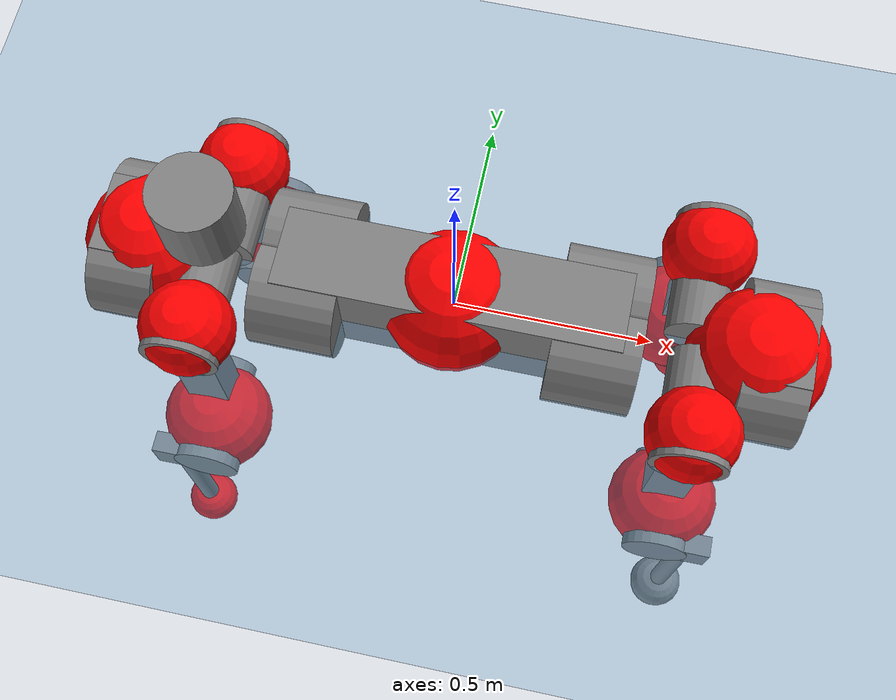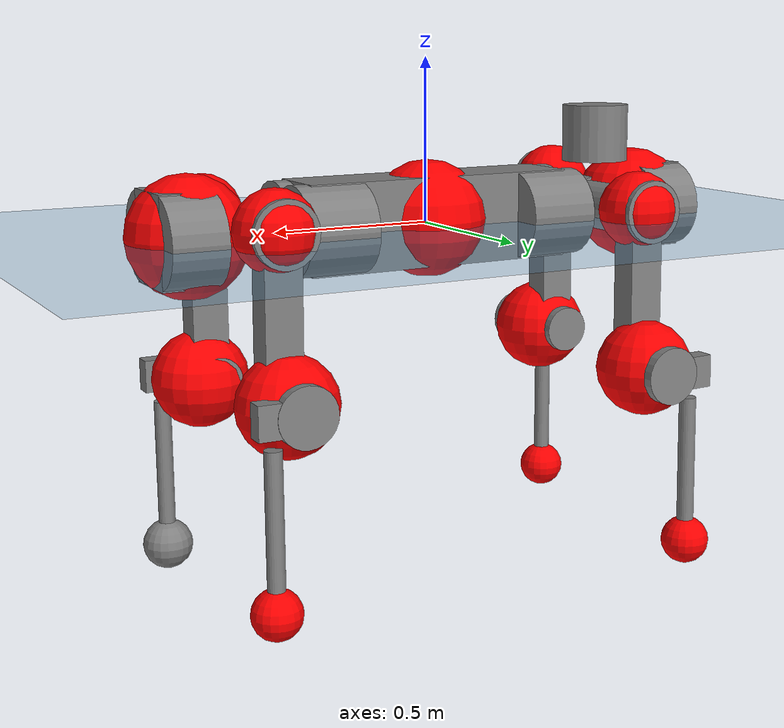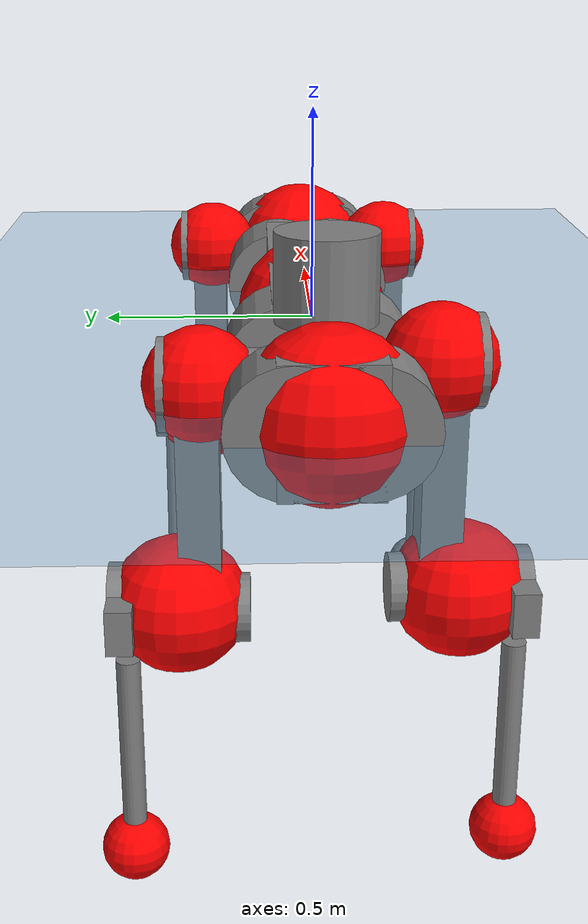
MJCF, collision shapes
<mujoco model="anymal_c">
  <compiler angle="radian" assetdir="assets" balanceinertia="true" inertiafromgeom="false"/>

  <option timestep="0.005" density="1.2" viscosity="2e-05"/>

  <size nkey="1"/>

  <visual>
    <quality shadowsize="8192"/>
    <map shadowclip="0.5"/>
  </visual>

  <default>
    <default class="/">
      <material specular="0" shininess="0.25"/>
      <geom contype="0" conaffinity="0" group="1" solref="-1000 -80"/>
      <site size="0.01 0.005 0.005" group="5"/>
      <general forcelimited="true" forcerange="-80 80" biastype="affine" gainprm="80" biasprm="0 -80 -2"/>
      <default class="anymal_c">
        <joint armature="0.01" damping="0.01" frictionloss="0.1"/>
        <default class="visual">
          <geom type="mesh" group="2"/>
          <default class="visual_zflip"/>
        </default>
        <default class="collision">
          <geom type="cylinder" group="3"/>
          <default class="foot">
            <geom size="0.03 0 0" type="sphere" condim="6" priority="1" friction="0.8 0.02 0.01" solimp="0.015 1 0.03"/>
          </default>
        </default>
      </default>
      <default class="reward_collision_sphere">
        <geom group="5" rgba="1 0 0 1"/>
      </default>
    </default>
  </default>

  <asset>
    <texture type="skybox" colorspace="auto" name="//unnamed_texture_0" builtin="gradient" rgb1="0.95 0.95 0.95" rgb2="0.95 0.95 0.95" width="100" height="600"/>
    <texture type="2d" colorspace="auto" name="texplane" builtin="checker" rgb1="0.345 0.575 0.748" rgb2="0.345 0.575 0.748" markrgb="1 1 1" width="512" height="512"/>
    <texture type="2d" colorspace="linear" name="base" file="base.png"/>
    <texture type="2d" colorspace="linear" name="top_shell" file="top_shell.png"/>
    <texture type="2d" colorspace="linear" name="bottom_shell" file="bottom_shell.png"/>
    <texture type="2d" colorspace="linear" name="remote" file="remote.png"/>
    <texture type="2d" colorspace="linear" name="hatch" file="hatch.png"/>
    <texture type="2d" colorspace="linear" name="handle" file="handle.png"/>
    <texture type="2d" colorspace="linear" name="face" file="face.png"/>
    <texture type="2d" colorspace="linear" name="battery" file="battery.png"/>
    <texture type="2d" colorspace="linear" name="lidar_cage" file="lidar_cage.png"/>
    <texture type="2d" colorspace="linear" name="depth_camera" file="depth_camera.png"/>
    <texture type="2d" colorspace="linear" name="wide_angle_camera" file="wide_angle_camera.png"/>
    <texture type="2d" colorspace="linear" name="lidar" file="lidar.png"/>
    <texture type="2d" colorspace="linear" name="drive" file="drive.png"/>
    <texture type="2d" colorspace="linear" name="hip_l" file="hip_l.png"/>
    <texture type="2d" colorspace="linear" name="shank_l" file="shank_l.png"/>
    <texture type="2d" colorspace="linear" name="foot" file="foot.png"/>
    <texture type="2d" colorspace="linear" name="thigh" file="thigh.png"/>
    <texture type="2d" colorspace="linear" name="shank_r" file="shank_r.png"/>
    <texture type="2d" colorspace="linear" name="hip_r" file="hip_r.png"/>
    <material name="MatPlane" class="/" texture="texplane" texuniform="true" texrepeat="2 2" specular="0.9" shininess="0.5"/>
    <material name="black_plastic" class="/" rgba="0.007 0.007 0.007 1"/>
    <material name="green" class="/" rgba="0.052 0.178 0.033 1"/>
    <material name="red" class="/" rgba="0.178 0.006 0.005 1"/>
    <material name="yellow" class="/" rgba="0.178 0.119 0.006 1"/>
    <material name="lwl" class="/" rgba="0.8 0.8 0.8 1"/>
    <material name="base" class="/" texture="base"/>
    <material name="top_shell" class="/" texture="top_shell"/>
    <material name="bottom_shell" class="/" texture="bottom_shell"/>
    <material name="hip_l" class="/" texture="hip_l"/>
    <material name="thigh" class="/" texture="thigh"/>
    <material name="shank_l" class="/" texture="shank_l"/>
    <material name="foot" class="/" texture="foot"/>
    <material name="hip_r" class="/" texture="hip_r"/>
    <material name="shank" class="/" texture="shank_r"/>
    <material name="hatch" class="/" texture="hatch"/>
    <material name="remote" class="/" texture="remote"/>
    <material name="handle" class="/" texture="handle"/>
    <material name="face" class="/" texture="face"/>
    <material name="depth_camera" class="/" texture="depth_camera"/>
    <material name="wide_angle_camera" class="/" texture="wide_angle_camera"/>
    <material name="battery" class="/" texture="battery"/>
    <material name="lidar_cage" class="/" texture="lidar_cage"/>
    <material name="lidar" class="/" texture="lidar"/>
    <material name="drive" class="/" texture="drive"/>
    <mesh name="base_0" class="/" file="base_0.obj"/>
    <mesh name="base_1" class="/" file="base_1.obj"/>
    <mesh name="base_2" class="/" file="base_2.obj"/>
    <mesh name="base_3" class="/" file="base_3.obj"/>
    <mesh name="base_4" class="/" file="base_4.obj"/>
    <mesh name="base_5" class="/" file="base_5.obj"/>
    <mesh name="top_shell" class="/" file="top_shell.obj"/>
    <mesh name="bottom_shell" class="/" file="bottom_shell.obj"/>
    <mesh name="remote" class="/" file="remote.obj"/>
    <mesh name="handle" class="/" file="handle.obj"/>
    <mesh name="face" class="/" file="face.obj"/>
    <mesh name="wide_angle_camera" class="/" file="wide_angle_camera.obj"/>
    <mesh name="depth_camera" class="/" file="depth_camera.obj"/>
    <mesh name="battery" class="/" file="battery.obj"/>
    <mesh name="lidar_cage" class="/" file="lidar_cage.obj"/>
    <mesh name="lidar" class="/" file="lidar.obj"/>
    <mesh name="drive" class="/" file="drive.obj"/>
    <mesh name="hip_l" class="/" file="hip_l.obj"/>
    <mesh name="thigh" class="/" file="thigh.obj"/>
    <mesh name="shank_l" class="/" file="shank_l.obj"/>
    <mesh name="foot" class="/" file="foot.obj"/>
    <mesh name="hip_r" class="/" file="hip_r.obj"/>
    <mesh name="hatch" class="/" file="hatch.obj"/>
    <mesh name="shank_r" class="/" file="shank_r.obj"/>
  </asset>

  <worldbody>
    <geom name="floor" class="/" size="100 100 0.125" type="plane" group="0" material="MatPlane"/>
    <light name="toplight_shadow" class="/" pos="0 0 5" dir="0.0990148 0.0990148 -0.990148" type="directional" ambient="0.04 0.04 0.04" diffuse="0.55 0.55 0.55" specular="0.12 0.12 0.12"/>
    <light name="toplight_fill" class="/" pos="0 0 5" dir="0.0990148 0.0990148 -0.990148" type="directional" castshadow="false" ambient="0.04 0.04 0.04" diffuse="0.3 0.3 0.3" specular="0.08 0.08 0.08"/>
    <body name="trunk" childclass="anymal_c" pos="-0.00544886 0.00202238 0.0139418" quat="0.999996 0.000926024 0.00278631 0.000127839">
      <inertial pos="0.0193296 0.0167057 0.0778035" quat="0.47829 0.488549 0.490795 0.540073" mass="62.7773" diaginertia="6.34976 0.545552 3.12394"/>
      <joint name="//unnamed_joint_0" type="free" armature="0" damping="0" frictionloss="0"/>
      <geom name="//unnamed_geom_1" class="visual" material="green" mesh="base_0"/>
      <geom name="//unnamed_geom_2" class="visual" material="yellow" mesh="base_1"/>
      <geom name="//unnamed_geom_3" class="visual" material="red" mesh="base_2"/>
      <geom name="//unnamed_geom_4" class="visual" material="black_plastic" mesh="base_3"/>
      <geom name="//unnamed_geom_5" class="visual" material="lwl" mesh="base_4"/>
      <geom name="//unnamed_geom_6" class="visual" material="base" mesh="base_5"/>
      <geom name="trunk_1" class="collision" size="0.433937 0.104743 0.13467" type="box"/>
      <geom name="trunk_2" class="collision" size="0.13467 0.108484" pos="0.371684 0.0712687 0" quat="0.707107 0 0.707107 0"/>
      <geom name="trunk_3" class="collision" size="0.13467 0.108484" pos="-0.371684 0.0712687 0" quat="0.707107 0 0.707107 0"/>
      <geom name="trunk_4" class="collision" size="0.13467 0.108484" pos="0.371684 -0.0712687 0" quat="0.707107 0 0.707107 0"/>
      <geom name="trunk_5" class="collision" size="0.13467 0.108484" pos="-0.371684 -0.0712687 0" quat="0.707107 0 0.707107 0"/>
      <geom name="//unnamed_geom_12" class="visual" material="top_shell" mesh="top_shell"/>
      <geom name="//unnamed_geom_13" class="visual" material="bottom_shell" mesh="bottom_shell"/>
      <geom name="//unnamed_geom_14" class="visual" material="remote" mesh="remote"/>
      <geom name="//unnamed_geom_15" class="visual" material="handle" mesh="handle"/>
      <geom name="//unnamed_geom_16" class="visual" pos="0.708335 0 0" quat="1 0 0 0" material="face" mesh="face"/>
      <geom name="trunk_6" class="collision" size="0.0822984 0.104743 0.13467" pos="0.802324 0 0" type="box"/>
      <geom name="//unnamed_geom_18" class="collision" size="0.13467 0.0822984" pos="0.802324 0.0712687 0" quat="0.707107 0 0.707107 0"/>
      <geom name="//unnamed_geom_19" class="collision" size="0.13467 0.0822984" pos="0.802324 -0.0712687 0" quat="0.707107 0 0.707107 0"/>
      <geom name="//unnamed_geom_20" class="visual" pos="0.788911 0 -0.0518537" quat="0.965926 0 0.258819 0" material="depth_camera" mesh="depth_camera"/>
      <geom name="//unnamed_geom_21" class="visual" pos="0.87666 0 0.026377" material="wide_angle_camera" mesh="wide_angle_camera"/>
      <geom name="//unnamed_geom_22" class="visual_zflip" pos="-0.708335 0 0" quat="0 0 0 1" material="face" mesh="face"/>
      <geom name="trunk_7" class="collision" size="0.0822984 0.104743 0.13467" pos="-0.802324 0 0" quat="0 0 0 1" type="box"/>
      <geom name="//unnamed_geom_24" class="collision" size="0.13467 0.0822984" pos="-0.802324 -0.0712687 0" quat="0 -0.707107 0 0.707107"/>
      <geom name="//unnamed_geom_25" class="collision" size="0.13467 0.0822984" pos="-0.802324 0.0712687 0" quat="0 -0.707107 0 0.707107"/>
      <geom name="//unnamed_geom_26" class="visual" pos="-0.788911 0 -0.0518537" quat="0 -0.258819 0 0.965926" material="depth_camera" mesh="depth_camera"/>
      <geom name="//unnamed_geom_27" class="visual_zflip" pos="-0.87666 0 0.026377" quat="0 0 0 1" material="wide_angle_camera" mesh="wide_angle_camera"/>
      <geom name="//unnamed_geom_28" class="visual" material="battery" mesh="battery"/>
      <geom name="//unnamed_geom_29" class="visual" pos="0 0.0687837 0.0507822" quat="0.683013 -0.183013 0.183013 0.683013" material="depth_camera" mesh="depth_camera"/>
      <geom name="//unnamed_geom_30" class="visual" pos="0 -0.0687837 0.0507822" quat="0.683013 0.183013 0.183013 -0.683013" material="depth_camera" mesh="depth_camera"/>
      <geom name="//unnamed_geom_31" class="visual" pos="-0.622036 0 0.129506" quat="1 0 0 0" material="lidar_cage" mesh="lidar_cage"/>
      <geom name="trunk_8" class="collision" size="0.104743 0.0897801" pos="-0.622036 0 0.235226"/>
      <geom name="//unnamed_geom_33" class="visual" pos="-0.622036 -0.000271383 0.250555" quat="0.707107 0 0 -0.707107" material="lidar" mesh="lidar"/>
      <geom name="//unnamed_geom_34" class="visual" pos="0.512496 0.106149 -1.28318e-08" quat="0.258819 0.965926 0 0" material="drive" mesh="drive"/>
      <geom name="//unnamed_geom_35" class="visual" pos="0.512496 -0.106149 1.28318e-08" quat="0.258819 -0.965926 0 0" material="drive" mesh="drive"/>
      <geom name="//unnamed_geom_36" class="visual" pos="-0.512496 0.106149 1.28318e-08" quat="0 0 0.965926 -0.258819" material="drive" mesh="drive"/>
      <geom name="//unnamed_geom_37" class="visual" pos="-0.512496 -0.106149 -1.28318e-08" quat="0 0 -0.965926 -0.258819" material="drive" mesh="drive"/>
      <geom name="//unnamed_geom_38" class="visual" pos="0.198231 0 0.128625" quat="1 0 0 0" material="hatch" mesh="hatch"/>
      <geom name="//unnamed_geom_39" class="reward_collision_sphere" size="0.17956"/>
      <geom name="//unnamed_geom_40" class="reward_collision_sphere" size="0.17956" pos="0.769 0 0"/>
      <geom name="//unnamed_geom_41" class="reward_collision_sphere" size="0.17956" pos="-0.769 0 0"/>
      <site name="imu" pos="0.519186 0.0404427 -0.00152858" size="0.0149633"/>
      <camera name="track" pos="0 -2.03625 0" quat="0.707107 0.707107 0 0" mode="trackcom"/>
      <camera name="ego_camera" pos="0.769 0 -0.0704796" quat="-0.5 -0.5 0.5 0.5"/>
      <body name="LF_HIP" pos="0.506152 0.115808 0.00380109" quat="0.259282 0.965785 -0.00442078 0.0035423">
        <inertial pos="0.0799755 -0.00406209 -0.00974959" quat="-0.181197 0.720353 -0.15303 0.651798" mass="11.9233" diaginertia="0.109692 0.0059022 0.0520522"/>
        <joint name="LF_HAA" pos="0 0 0" axis="0.997301 0.05355 0.0502292" stiffness="0.0439569" range="-0.619601 0.245563" armature="0.00142262" damping="0.0912696" frictionloss="0.202929"/>
        <geom name="//unnamed_geom_42" class="visual" pos="0 -0.000754835 0.000123981" quat="0.258819 -0.965926 0 0" material="hip_l" mesh="hip_l"/>
        <geom name="//unnamed_geom_43" class="visual" pos="0.102363 -0.115203 -0.0720147" quat="0.183013 -0.683013 0.683013 0.183013" material="drive" mesh="drive"/>
        <geom name="//unnamed_geom_44" class="collision" size="0.0748167 0.104743" pos="0.102362 -0.0121766 -0.0121665" quat="-0.353553 -0.612372 0.612372 -0.353553"/>
        <body name="LF_THIGH" pos="0.103376 -0.0687054 -0.074442" quat="0.182573 -0.68469 0.681847 0.181523">
          <inertial pos="0.0421591 0.00028307 -0.450057" quat="0.996997 -0.0140362 -0.0458641 0.0607952" mass="8.09774" diaginertia="0.502513 0.0305567 0.0725406"/>
          <joint name="LF_HFE" pos="0 0 0" axis="0.995724 -0.0565926 0.0730181" range="-2.97579 2.99579" armature="0.0101533" damping="0.0496708" frictionloss="0.273933"/>
          <geom name="//unnamed_geom_45" class="visual" pos="0.0137435 2.16566e-05 0" quat="0.707107 0 0 -0.707107" material="thigh" mesh="thigh"/>
          <geom name="//unnamed_geom_46" class="collision" size="0.0972617 0.0598534" pos="0.0683556 0 0" quat="0.5 0.5 -0.5 -0.5"/>
          <geom name="//unnamed_geom_47" class="collision" size="0.0561125 0.04489 0.211453" pos="0.0512667 0 -0.248994" quat="0.707107 0 0 -0.707107" type="box"/>
          <geom name="//unnamed_geom_48" class="visual" pos="0.171402 0 -0.502167" quat="1 0 0 0" material="drive" mesh="drive"/>
          <geom name="//unnamed_geom_49" class="collision" size="0.0748167 0.104743" pos="0.0517794 0 -0.502167" quat="0.707107 0 0.707107 0"/>
          <geom name="//unnamed_geom_50" class="reward_collision_sphere" size="0.119707" pos="0.0427222 0 0"/>
          <body name="LF_SHANK" pos="0.155921 0.0158762 -0.483378" quat="0.99997 0.00167777 -0.00559952 -0.00506106">
            <inertial pos="0.0173374 -0.0612939 -0.133936" quat="0.98787 -0.154724 -0.00533711 -0.0120136" mass="2.39247" diaginertia="0.16844 0.00998599 0.0239844"/>
            <joint name="LF_KFE" pos="0 0 0" axis="0.998728 0.043811 0.0249499" stiffness="0.0193755" range="-2.86974 2.93705" armature="0.0067509" damping="0.0835628" frictionloss="0.0513524"/>
            <geom name="//unnamed_geom_51" class="visual" pos="0.00448146 0.0238954 0" quat="0.707107 0 0 -0.707107" material="shank_l" mesh="shank_l"/>
            <geom name="LF_kfe_act" class="collision" size="0.0897801 0.0299267" pos="0.0341778 0 0" quat="0.5 0.5 -0.5 -0.5"/>
            <geom name="//unnamed_geom_53" class="collision" size="0.0860377 0.0505013 0.0284304" pos="0.0341778 -0.0585411 0" quat="0.5 0.5 -0.5 -0.5" type="box"/>
            <geom name="//unnamed_geom_54" class="visual" pos="0.0222999 -0.0818435 -0.5955" quat="0.382683 0 0 -0.92388" material="foot" mesh="foot"/>
            <geom name="LF_calf" class="collision" size="0.0261859 0.21136" pos="0.022301 -0.089544 -0.29775" quat="0.707107 0 0 -0.707107"/>
            <geom name="LF_foot" class="foot" size="0.0533468" pos="0.022301 -0.089544 -0.555855" quat="0.707107 0 0 -0.707107"/>
            <geom name="//unnamed_geom_57" class="reward_collision_sphere" size="0.149633" pos="-0.0854445 0 0"/>
            <geom name="//unnamed_geom_58" class="reward_collision_sphere" size="0.0748167" pos="0.022301 -0.089544 -0.555855"/>
            <site name="LF_foot" class="foot" pos="0.022301 -0.089544 -0.555855" quat="0.707107 0 0 -0.707107" size="0.0149633"/>
          </body>
        </body>
      </body>
      <body name="RF_HIP" pos="0.525823 -0.111733 0.00535659" quat="0.25909 -0.965852 -0.0015931 -0.000498747">
        <inertial pos="0.080529 0.0213638 -0.0198073" quat="0.146898 0.669838 0.124095 0.717173" mass="8.60006" diaginertia="0.0811696 0.00381008 0.045853"/>
        <joint name="RF_HAA" pos="0 0 0" axis="0.998789 -0.00748786 0.0486285" stiffness="0.0464495" range="-0.148798 0.585121" armature="0.026571" damping="0.0233726" frictionloss="0.274914"/>
        <geom name="//unnamed_geom_59" class="visual" pos="0 0.000754829 0.000123981" quat="0.258819 0.965926 0 0" material="hip_r" mesh="hip_r"/>
        <geom name="//unnamed_geom_60" class="visual" pos="0.102362 0.115203 -0.0720147" quat="0.183013 0.683013 0.683013 -0.183013" material="drive" mesh="drive"/>
        <geom name="//unnamed_geom_61" class="collision" size="0.0748167 0.104743" pos="0.102362 0.0121766 -0.0121665" quat="-0.353553 0.612372 0.612372 0.353553"/>
        <body name="RF_THIGH" pos="0.113193 0.056387 -0.0622584" quat="0.186306 0.681636 0.683471 -0.183111">
          <inertial pos="0.0526313 -0.00653336 -0.42755" quat="0.998022 -0.0283214 -0.0539141 0.0155736" mass="14.9019" diaginertia="0.486671 0.0323945 0.0725301"/>
          <joint name="RF_HFE" pos="0 0 0" axis="0.997166 -0.0244974 -0.0711274" stiffness="0.00805115" range="-3.51213 2.86948" armature="0.015099" damping="0.0908469" frictionloss="0.00133556"/>
          <geom name="//unnamed_geom_62" class="visual" pos="0.0137435 2.16566e-05 0" quat="0.707107 0 0 -0.707107" material="thigh" mesh="thigh"/>
          <geom name="//unnamed_geom_63" class="collision" size="0.0972617 0.0598534" pos="0.0683556 0 0" quat="0.5 0.5 0.5 0.5"/>
          <geom name="//unnamed_geom_64" class="collision" size="0.0561125 0.04489 0.211453" pos="0.0512667 0 -0.248994" quat="0.707107 0 0 0.707107" type="box"/>
          <geom name="//unnamed_geom_65" class="visual" pos="0.171402 0 -0.502167" quat="1 0 0 0" material="drive" mesh="drive"/>
          <geom name="//unnamed_geom_66" class="collision" size="0.0748167 0.104743" pos="0.0517794 0 -0.502167" quat="0.707107 0 0.707107 0"/>
          <geom name="//unnamed_geom_67" class="reward_collision_sphere" size="0.119707" pos="0.0427222 0 0"/>
          <body name="RF_SHANK" pos="0.154797 0.017593 -0.512509" quat="0.999997 0.0019833 -0.000946557 0.0013534">
            <inertial pos="0.0120644 0.0670475 -0.159587" quat="0.987125 0.136158 -0.0153206 0.0825252" mass="2.18158" diaginertia="0.186384 0.0123127 0.018283"/>
            <joint name="RF_KFE" pos="0 0 0" axis="0.9997 -0.0145983 -0.0196902" range="-2.88708 2.87623" armature="0.0217998" damping="0" frictionloss="0.285609"/>
            <geom name="//unnamed_geom_68" class="visual" pos="0.00448144 -0.0238953 0" quat="0.707107 0 0 0.707107" material="shank" mesh="shank_r"/>
            <geom name="RF_kfe_act" class="collision" size="0.0897801 0.0299267" pos="0.0341778 0 0" quat="0.5 0.5 0.5 0.5"/>
            <geom name="//unnamed_geom_70" class="collision" size="0.0860377 0.0505013 0.0284304" pos="0.0341778 0.0585411 0" quat="0.5 0.5 0.5 0.5" type="box"/>
            <geom name="//unnamed_geom_71" class="visual" pos="0.0223021 0.0818435 -0.5955" quat="0.382683 0 0 0.92388" material="foot" mesh="foot"/>
            <geom name="RF_calf" class="collision" size="0.0261859 0.21136" pos="0.022301 0.089544 -0.29775" quat="0.707107 0 0 0.707107"/>
            <geom name="RF_foot" class="foot" size="0.0784507" pos="0.022301 0.089544 -0.555855" quat="0.707107 0 0 0.707107"/>
            <geom name="//unnamed_geom_74" class="reward_collision_sphere" size="0.149633" pos="-0.0854445 0 0"/>
            <geom name="//unnamed_geom_75" class="reward_collision_sphere" size="0.0748167" pos="0.022301 0.089544 -0.555855"/>
            <site name="RF_foot" class="foot" pos="0.022301 0.089544 -0.555855" quat="0.707107 0 0 0.707107" size="0.0149633"/>
          </body>
        </body>
      </body>
      <body name="LH_HIP" pos="-0.49397 0.0951679 0.00141539" quat="-0.0040644 0.00143976 0.965741 -0.259474">
        <inertial pos="0.0860079 -0.00155263 -0.0192888" quat="0.0931725 0.664323 0.17299 0.721157" mass="9.13967" diaginertia="0.114845 0.00498471 0.0810544"/>
        <joint name="LH_HAA" pos="0 0 0" axis="0.998825 0.0483654 -0.00315292" stiffness="0.0479462" range="-0.68939 1.1163" armature="0.0284656" damping="0.0792011" frictionloss="0.182323"/>
        <geom name="//unnamed_geom_76" class="visual" pos="0 0.000754829 0.000123981" quat="-0.258819 -0.965926 0 0" material="hip_r" mesh="hip_r"/>
        <geom name="//unnamed_geom_77" class="visual" pos="0.102362 0.115203 -0.0720147" quat="0.183013 0.683013 0.683013 -0.183013" material="drive" mesh="drive"/>
        <geom name="//unnamed_geom_78" class="collision" size="0.0748167 0.104743" pos="0.102362 0.0121766 -0.0121665" quat="-0.353553 0.612372 0.612372 0.353553"/>
        <body name="LH_THIGH" pos="0.115621 0.0933988 -0.0656083" quat="0.182821 0.68326 0.682883 -0.182767">
          <inertial pos="0.0518993 -0.015459 -0.42621" quat="0.994498 0.0137581 -0.0638741 0.0818774" mass="10.1605" diaginertia="0.443935 0.0375056 0.0623834"/>
          <joint name="LH_HFE" pos="0 0 0" axis="0.996854 0.0747927 -0.0262242" range="-3.20644 3.2542" armature="0.0237056" damping="0.0637617" frictionloss="0.0772355"/>
          <geom name="//unnamed_geom_79" class="visual" pos="0.0137435 2.16566e-05 0" quat="0.707107 0 0 -0.707107" material="thigh" mesh="thigh"/>
          <geom name="//unnamed_geom_80" class="collision" size="0.0972617 0.0598534" pos="0.0683556 0 0" quat="0.5 0.5 -0.5 -0.5"/>
          <geom name="//unnamed_geom_81" class="collision" size="0.0561125 0.04489 0.211453" pos="0.0512667 0 -0.248994" quat="0.707107 0 0 -0.707107" type="box"/>
          <geom name="//unnamed_geom_82" class="visual" pos="0.171402 0 -0.502167" quat="1 0 0 0" material="drive" mesh="drive"/>
          <geom name="//unnamed_geom_83" class="collision" size="0.0748167 0.104743" pos="0.0517794 0 -0.502167" quat="0.707107 0 0.707107 0"/>
          <geom name="//unnamed_geom_84" class="reward_collision_sphere" size="0.119707" pos="0.0427222 0 0"/>
          <body name="LH_SHANK" pos="0.184791 -0.00432855 -0.492138" quat="0.999987 0.00221347 -0.00162776 0.00435348">
            <inertial pos="0.00882823 0.0623761 -0.138223" quat="0.987905 0.110174 -0.0948352 0.0539634" mass="1.89681" diaginertia="0.13412 0.00901406 0.0226823"/>
            <joint name="LH_KFE" pos="0 0 0" axis="0.997325 -0.0730872 -0.00120866" range="-3.10419 3.11495" armature="0.0253392" damping="0.0361926" frictionloss="0.0492326"/>
            <geom name="//unnamed_geom_85" class="visual" pos="0.00448144 -0.0238953 0" quat="-0.707107 0 0 -0.707107" material="shank" mesh="shank_r"/>
            <geom name="LH_kfe_act" class="collision" size="0.0897801 0.0299267" pos="0.0341778 0 0" quat="0.5 0.5 -0.5 -0.5"/>
            <geom name="//unnamed_geom_87" class="collision" size="0.0860377 0.0505013 0.0284304" pos="0.0341778 0.0585411 0" quat="0.5 0.5 -0.5 -0.5" type="box"/>
            <geom name="//unnamed_geom_88" class="visual" pos="0.0223021 0.0818435 -0.5955" quat="-0.382683 0 0 -0.92388" material="foot" mesh="foot"/>
            <geom name="LH_calf" class="collision" size="0.0261859 0.21136" pos="0.022301 0.089544 -0.29775" quat="0.707107 0 0 -0.707107"/>
            <geom name="LH_foot" class="foot" size="0.0125411" pos="0.022301 0.089544 -0.555855" quat="0.707107 0 0 -0.707107"/>
            <geom name="//unnamed_geom_91" class="reward_collision_sphere" size="0.149633" pos="-0.0854445 0 0"/>
            <geom name="//unnamed_geom_92" class="reward_collision_sphere" size="0.0748167" pos="0.022301 0.089544 -0.555855"/>
            <site name="LH_foot" class="foot" pos="0.022301 0.089544 -0.555855" quat="0.707107 0 0 -0.707107" size="0.0149633"/>
          </body>
        </body>
      </body>
      <body name="RH_HIP" pos="-0.51711 -0.088691 0.0109401" quat="0.00364942 0.00651827 -0.966043 -0.258272">
        <inertial pos="0.114222 -0.0120166 -0.0308814" quat="-0.0920523 0.725471 -0.146217 0.666212" mass="10.6645" diaginertia="0.0942494 0.00615731 0.0785453"/>
        <joint name="RH_HAA" pos="0 0 0" axis="0.999846 0.0160597 -0.00705919" stiffness="0.0572978" range="-0.402078 0.119189" armature="0.0177484" damping="0.0721099" frictionloss="0.130799"/>
        <geom name="//unnamed_geom_93" class="visual" pos="0 -0.000754835 0.000123981" quat="-0.258819 0.965926 0 0" material="hip_l" mesh="hip_l"/>
        <geom name="//unnamed_geom_94" class="visual" pos="0.102363 -0.115203 -0.0720147" quat="-0.183013 0.683013 -0.683013 -0.183013" material="drive" mesh="drive"/>
        <geom name="//unnamed_geom_95" class="collision" size="0.0748167 0.104743" pos="0.102362 -0.0121766 -0.0121665" quat="0.353553 0.612372 -0.612372 0.353553"/>
        <body name="RH_THIGH" pos="0.0975388 -0.0625283 -0.0911757" quat="-0.180792 0.683811 -0.682508 -0.184119">
          <inertial pos="0.0385177 0.00780307 -0.440009" quat="0.99319 -0.00492535 -0.080664 0.0839196" mass="15.7097" diaginertia="0.657965 0.0384877 0.0797698"/>
          <joint name="RH_HFE" pos="0 0 0" axis="0.996963 -0.0673134 -0.0391672" stiffness="0.000205551" range="-3.23527 3.10106" armature="0.0226544" damping="0.06202" frictionloss="0.129299"/>
          <geom name="//unnamed_geom_96" class="visual" pos="0.0137435 2.16566e-05 0" quat="0.707107 0 0 -0.707107" material="thigh" mesh="thigh"/>
          <geom name="//unnamed_geom_97" class="collision" size="0.0972617 0.0598534" pos="0.0683556 0 0" quat="0.5 0.5 0.5 0.5"/>
          <geom name="//unnamed_geom_98" class="collision" size="0.0561125 0.04489 0.211453" pos="0.0512667 0 -0.248994" quat="0.707107 0 0 0.707107" type="box"/>
          <geom name="//unnamed_geom_99" class="visual" pos="0.171402 0 -0.502167" quat="1 0 0 0" material="drive" mesh="drive"/>
          <geom name="//unnamed_geom_100" class="collision" size="0.0748167 0.104743" pos="0.0517794 0 -0.502167" quat="0.707107 0 0.707107 0"/>
          <geom name="//unnamed_geom_101" class="reward_collision_sphere" size="0.119707" pos="0.0427222 0 0"/>
          <body name="RH_SHANK" pos="0.188405 0.00772504 -0.509079" quat="0.999984 0.00382685 -0.00394007 -0.00157886">
            <inertial pos="0.0195454 -0.0619374 -0.146934" quat="0.998374 -0.041675 -0.0294759 -0.0253761" mass="1.7047" diaginertia="0.159734 0.00759383 0.0168126"/>
            <joint name="RH_KFE" pos="0 0 0" axis="0.99997 0.00761778 -0.000997622" range="-2.99219 3.32274" armature="0.0284811" damping="0" frictionloss="0.151514"/>
            <geom name="//unnamed_geom_102" class="visual" pos="0.00448146 0.0238954 0" quat="0.707107 0 0 -0.707107" material="shank_l" mesh="shank_l"/>
            <geom name="RH_kfe_act" class="collision" size="0.0897801 0.0299267" pos="0.0341778 0 0" quat="0.5 0.5 0.5 0.5"/>
            <geom name="//unnamed_geom_104" class="collision" size="0.0860377 0.0505013 0.0284304" pos="0.0341778 -0.0585411 0" quat="0.5 0.5 0.5 0.5" type="box"/>
            <geom name="//unnamed_geom_105" class="visual" pos="0.0222999 -0.0818435 -0.5955" quat="0.382683 0 0 -0.92388" material="foot" mesh="foot"/>
            <geom name="RH_calf" class="collision" size="0.0261859 0.21136" pos="0.022301 -0.089544 -0.29775" quat="0.707107 0 0 0.707107"/>
            <geom name="RH_foot" class="foot" size="0.0677518" pos="0.022301 -0.089544 -0.555855" quat="0.707107 0 0 0.707107"/>
            <geom name="//unnamed_geom_108" class="reward_collision_sphere" size="0.149633" pos="-0.0854445 0 0"/>
            <geom name="//unnamed_geom_109" class="reward_collision_sphere" size="0.0748167" pos="0.022301 -0.089544 -0.555855"/>
            <site name="RH_foot" class="foot" pos="0.022301 -0.089544 -0.555855" quat="0.707107 0 0 0.707107" size="0.0149633"/>
          </body>
        </body>
      </body>
    </body>
  </worldbody>

  <contact>
    <pair class="/" geom1="floor" geom2="LF_foot" name="//unnamed_contact_0"/>
    <pair class="/" geom1="floor" geom2="RF_foot" name="//unnamed_contact_1"/>
    <pair class="/" geom1="floor" geom2="LH_foot" name="//unnamed_contact_2"/>
    <pair class="/" geom1="floor" geom2="RH_foot" name="//unnamed_contact_3"/>
  </contact>

  <actuator>
    <general name="LF_HAA" class="/" joint="LF_HAA" forcerange="-150.386 150.386" gainprm="96.9702" biasprm="0 -96.9702 -3.57845"/>
    <general name="LF_HFE" class="/" joint="LF_HFE" forcerange="-175.438 175.438" gainprm="96.9702" biasprm="0 -96.9702 -3.57845"/>
    <general name="LF_KFE" class="/" joint="LF_KFE" forcerange="-156.868 156.868" gainprm="96.9702" biasprm="0 -96.9702 -3.57845"/>
    <general name="RF_HAA" class="/" joint="RF_HAA" forcerange="-178.048 178.048" gainprm="96.9702" biasprm="0 -96.9702 -3.57845"/>
    <general name="RF_HFE" class="/" joint="RF_HFE" forcerange="-70.1207 70.1207" gainprm="96.9702" biasprm="0 -96.9702 -3.57845"/>
    <general name="RF_KFE" class="/" joint="RF_KFE" forcerange="-193.368 193.368" gainprm="96.9702" biasprm="0 -96.9702 -3.57845"/>
    <general name="LH_HAA" class="/" joint="LH_HAA" forcerange="-120.381 120.381" gainprm="96.9702" biasprm="0 -96.9702 -3.57845"/>
    <general name="LH_HFE" class="/" joint="LH_HFE" forcerange="-194.324 194.324" gainprm="96.9702" biasprm="0 -96.9702 -3.57845"/>
    <general name="LH_KFE" class="/" joint="LH_KFE" forcerange="-155.377 155.377" gainprm="96.9702" biasprm="0 -96.9702 -3.57845"/>
    <general name="RH_HAA" class="/" joint="RH_HAA" forcerange="-161.738 161.738" gainprm="96.9702" biasprm="0 -96.9702 -3.57845"/>
    <general name="RH_HFE" class="/" joint="RH_HFE" forcerange="-200.684 200.684" gainprm="96.9702" biasprm="0 -96.9702 -3.57845"/>
    <general name="RH_KFE" class="/" joint="RH_KFE" forcerange="-48.9191 48.9191" gainprm="96.9702" biasprm="0 -96.9702 -3.57845"/>
  </actuator>

  <sensor>
    <gyro site="imu" name="imu_angular_velocity"/>
    <velocimeter site="imu" name="imu_linear_velocity"/>
    <framelinvel objtype="site" objname="LF_foot" name="LF_foot_global_linear_velocity"/>
    <framelinvel objtype="site" objname="RF_foot" name="RF_foot_global_linear_velocity"/>
    <framelinvel objtype="site" objname="LH_foot" name="LH_foot_global_linear_velocity"/>
    <framelinvel objtype="site" objname="RH_foot" name="RH_foot_global_linear_velocity"/>
  </sensor>

  <keyframe>
    <key name="home" qpos="0 0 0.55 1 0 0 0 0 0.4 -0.8 0 -0.4 0.8 0 -0.4 0.8 0 0.4 -0.8"/>
  </keyframe>
</mujoco>
